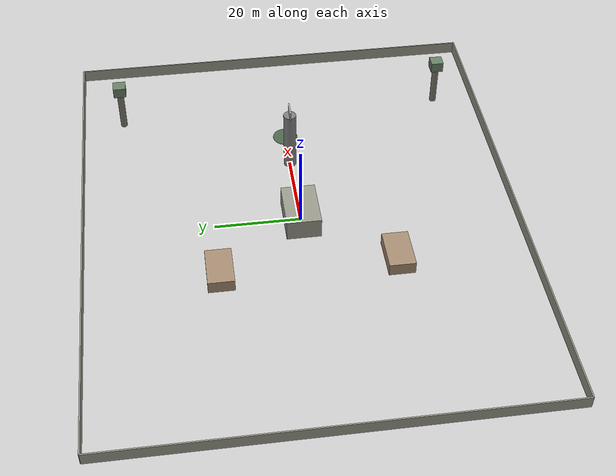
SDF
<?xml version="1.0" ?>
<sdf version="1.6">
  <world name="defense_base">

    <plugin name="gazebo_ros_state" filename="libgazebo_ros_state.so">
      <ros>
        <namespace>/gazebo</namespace>
      </ros>
      <update_rate>50.0</update_rate>
    </plugin>

    <include>
      <uri>model://sun</uri>
    </include>
    <include>
      <uri>model://ground_plane</uri>
    </include>

    <physics type="ode">
      <max_step_size>0.004</max_step_size>
      <real_time_factor>1.0</real_time_factor>
      <real_time_update_rate>250</real_time_update_rate>
    </physics>

    <scene>
      <ambient>0.6 0.6 0.6 1</ambient>
      <background>0.4 0.6 0.8 1</background>
      <shadows>true</shadows>
    </scene>

    <!-- ========== SAVUNMA TESİSİ ========== -->

    <!-- Ana komuta binasi -->
    <model name="command_building">
      <static>true</static>
      <pose>0 0 2.5 0 0 0</pose>
      <link name="link">
        <collision name="col">
          <geometry><box><size>12 8 5</size></box></geometry>
        </collision>
        <visual name="vis">
          <geometry><box><size>12 8 5</size></box></geometry>
          <material>
            <ambient>0.5 0.5 0.45 1</ambient>
            <diffuse>0.6 0.6 0.55 1</diffuse>
          </material>
        </visual>
      </link>
    </model>

    <!-- Radar kulesi -->
    <model name="radar_tower">
      <static>true</static>
      <pose>20 0 0 0 0 0</pose>
      <link name="base">
        <collision name="col">
          <geometry><cylinder><radius>1.5</radius><length>15</length></cylinder></geometry>
          <pose>0 0 7.5 0 0 0</pose>
        </collision>
        <visual name="vis">
          <geometry><cylinder><radius>1.5</radius><length>15</length></cylinder></geometry>
          <pose>0 0 7.5 0 0 0</pose>
          <material>
            <ambient>0.4 0.4 0.4 1</ambient>
            <diffuse>0.5 0.5 0.5 1</diffuse>
          </material>
        </visual>
        <visual name="dish">
          <geometry><box><size>4 0.3 2</size></box></geometry>
          <pose>0 0 16 0 0 0</pose>
          <material>
            <ambient>0.7 0.7 0.7 1</ambient>
            <diffuse>0.8 0.8 0.8 1</diffuse>
          </material>
        </visual>
      </link>
    </model>

    <!-- Depo binasi 1 -->
    <model name="depot_1">
      <static>true</static>
      <pose>-15 20 1.5 0 0 0</pose>
      <link name="link">
        <collision name="col">
          <geometry><box><size>10 6 3</size></box></geometry>
        </collision>
        <visual name="vis">
          <geometry><box><size>10 6 3</size></box></geometry>
          <material>
            <ambient>0.55 0.45 0.35 1</ambient>
            <diffuse>0.65 0.55 0.45 1</diffuse>
          </material>
        </visual>
      </link>
    </model>

    <!-- Depo binasi 2 -->
    <model name="depot_2">
      <static>true</static>
      <pose>-15 -20 1.5 0 0 0</pose>
      <link name="link">
        <collision name="col">
          <geometry><box><size>10 6 3</size></box></geometry>
        </collision>
        <visual name="vis">
          <geometry><box><size>10 6 3</size></box></geometry>
          <material>
            <ambient>0.55 0.45 0.35 1</ambient>
            <diffuse>0.65 0.55 0.45 1</diffuse>
          </material>
        </visual>
      </link>
    </model>

    <!-- Gozetleme kulesi 1 -->
    <model name="watch_tower_1">
      <static>true</static>
      <pose>40 40 0 0 0 0</pose>
      <link name="link">
        <collision name="col">
          <geometry><cylinder><radius>0.8</radius><length>10</length></cylinder></geometry>
          <pose>0 0 5 0 0 0</pose>
        </collision>
        <visual name="tower">
          <geometry><cylinder><radius>0.8</radius><length>10</length></cylinder></geometry>
          <pose>0 0 5 0 0 0</pose>
          <material>
            <ambient>0.35 0.35 0.3 1</ambient>
            <diffuse>0.45 0.45 0.4 1</diffuse>
          </material>
        </visual>
        <visual name="cabin">
          <geometry><box><size>3 3 2.5</size></box></geometry>
          <pose>0 0 11.25 0 0 0</pose>
          <material>
            <ambient>0.3 0.4 0.3 1</ambient>
            <diffuse>0.4 0.5 0.4 1</diffuse>
          </material>
        </visual>
      </link>
    </model>

    <!-- Gozetleme kulesi 2 -->
    <model name="watch_tower_2">
      <static>true</static>
      <pose>40 -40 0 0 0 0</pose>
      <link name="link">
        <collision name="col">
          <geometry><cylinder><radius>0.8</radius><length>10</length></cylinder></geometry>
          <pose>0 0 5 0 0 0</pose>
        </collision>
        <visual name="tower">
          <geometry><cylinder><radius>0.8</radius><length>10</length></cylinder></geometry>
          <pose>0 0 5 0 0 0</pose>
          <material>
            <ambient>0.35 0.35 0.3 1</ambient>
            <diffuse>0.45 0.45 0.4 1</diffuse>
          </material>
        </visual>
        <visual name="cabin">
          <geometry><box><size>3 3 2.5</size></box></geometry>
          <pose>0 0 11.25 0 0 0</pose>
          <material>
            <ambient>0.3 0.4 0.3 1</ambient>
            <diffuse>0.4 0.5 0.4 1</diffuse>
          </material>
        </visual>
      </link>
    </model>

    <!-- Cevre duvari - kuzey -->
    <model name="wall_north">
      <static>true</static>
      <pose>0 50 1.5 0 0 0</pose>
      <link name="link">
        <collision name="col"><geometry><box><size>120 0.3 3</size></box></geometry></collision>
        <visual name="vis">
          <geometry><box><size>120 0.3 3</size></box></geometry>
          <material><ambient>0.5 0.5 0.45 1</ambient><diffuse>0.6 0.6 0.55 1</diffuse></material>
        </visual>
      </link>
    </model>
    <!-- Cevre duvari - guney -->
    <model name="wall_south">
      <static>true</static>
      <pose>0 -50 1.5 0 0 0</pose>
      <link name="link">
        <collision name="col"><geometry><box><size>120 0.3 3</size></box></geometry></collision>
        <visual name="vis">
          <geometry><box><size>120 0.3 3</size></box></geometry>
          <material><ambient>0.5 0.5 0.45 1</ambient><diffuse>0.6 0.6 0.55 1</diffuse></material>
        </visual>
      </link>
    </model>
    <!-- Cevre duvari - dogu -->
    <model name="wall_east">
      <static>true</static>
      <pose>60 0 1.5 0 0 1.5708</pose>
      <link name="link">
        <collision name="col"><geometry><box><size>100 0.3 3</size></box></geometry></collision>
        <visual name="vis">
          <geometry><box><size>100 0.3 3</size></box></geometry>
          <material><ambient>0.5 0.5 0.45 1</ambient><diffuse>0.6 0.6 0.55 1</diffuse></material>
        </visual>
      </link>
    </model>
    <!-- Cevre duvari - bati -->
    <model name="wall_west">
      <static>true</static>
      <pose>-60 0 1.5 0 0 1.5708</pose>
      <link name="link">
        <collision name="col"><geometry><box><size>100 0.3 3</size></box></geometry></collision>
        <visual name="vis">
          <geometry><box><size>100 0.3 3</size></box></geometry>
          <material><ambient>0.5 0.5 0.45 1</ambient><diffuse>0.6 0.6 0.55 1</diffuse></material>
        </visual>
      </link>
    </model>

    <!-- TAROS savunma birimi spawn noktasi -->
    <model name="taros_pad">
      <static>true</static>
      <pose>30 0 0.05 0 0 0</pose>
      <link name="link">
        <visual name="vis">
          <geometry><cylinder><radius>3</radius><length>0.1</length></cylinder></geometry>
          <material>
            <ambient>0.2 0.3 0.2 1</ambient>
            <diffuse>0.3 0.4 0.3 1</diffuse>
          </material>
        </visual>
      </link>
    </model>

  </world>
</sdf>
